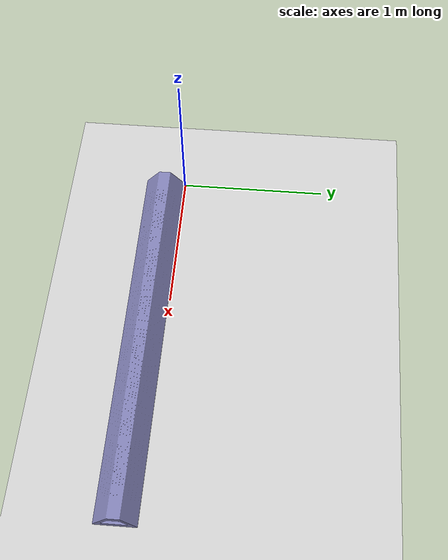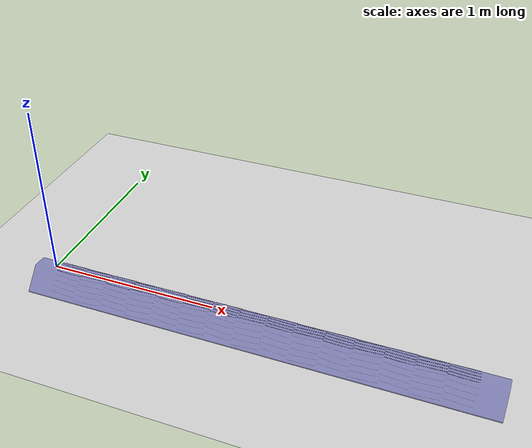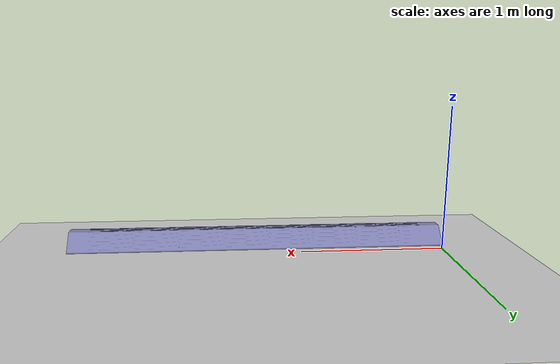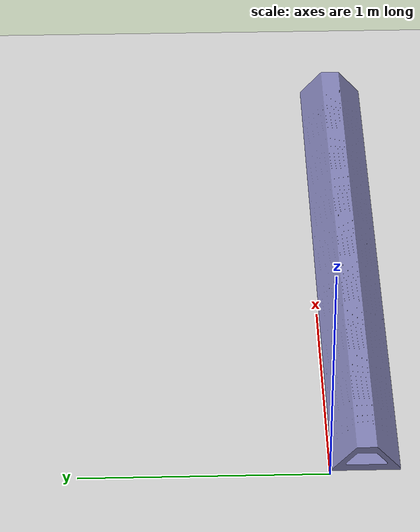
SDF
<?xml version='1.0'?>
<sdf version="1.9">
  <world name='empty'>
    <physics name='1ms' type='ignored'>
      <max_step_size>0.001</max_step_size>
      <real_time_factor>1</real_time_factor>
      <real_time_update_rate>1000</real_time_update_rate>
    </physics>
    <plugin name='gz::sim::systems::Physics' filename='gz-sim-physics-system'/>
    <plugin name='gz::sim::systems::UserCommands' filename='gz-sim-user-commands-system'/>
    <plugin name='gz::sim::systems::SceneBroadcaster' filename='gz-sim-scene-broadcaster-system'/>
    <plugin name='gz::sim::systems::Contact' filename='gz-sim-contact-system'/>

    <plugin filename="libignition-gazebo-sensors-system.so" name="ignition::gazebo::systems::Sensors">
      <render_engine>ogre2</render_engine>
    </plugin>

    <gravity>0 0 -9.8000000000000007</gravity>
    <magnetic_field>5.5644999999999998e-06 2.2875799999999999e-05 -4.2388400000000002e-05</magnetic_field>
    <atmosphere type='adiabatic'/>
    <scene>
      <ambient>0.400000006 0.400000006 0.400000006 1</ambient>
      <background>0.699999988 0.699999988 0.699999988 1</background>
      <shadows>true</shadows>
    </scene>
    <model name='ground_plane'>
      <static>true</static>
      <link name='link'>
        <collision name='collision'>
          <geometry>
            <plane>
              <normal>0 0 1</normal>
              <size>100 100</size>
            </plane>
          </geometry>
          <surface>
            <friction>
              <ode/>
            </friction>
            <bounce/>
            <contact/>
          </surface>
        </collision>
        <visual name='visual'>
          <geometry>
            <plane>
              <normal>0 0 1</normal>
              <size>100 100</size>
            </plane>
          </geometry>
          <material>
            <ambient>0.800000012 0.800000012 0.800000012 1</ambient>
            <diffuse>0.800000012 0.800000012 0.800000012 1</diffuse>
            <specular>0.800000012 0.800000012 0.800000012 1</specular>
          </material>
        </visual>
        <pose>0 0 0 0 0 0</pose>
        <inertial>
          <pose>0 0 0 0 0 0</pose>
          <mass>1</mass>
          <inertia>
            <ixx>1</ixx>
            <ixy>0</ixy>
            <ixz>0</ixz>
            <iyy>1</iyy>
            <iyz>0</iyz>
            <izz>1</izz>
          </inertia>
        </inertial>
        <enable_wind>false</enable_wind>
      </link>
      <pose>0 0 0 0 0 0</pose>
      <self_collide>false</self_collide>
    </model>

    <!-- New Ramp Model -->
    <model name='ramp'>
      <static>true</static>
      <link name='link'>
        <collision name='collision'>
          <geometry>
            <mesh>
              <uri>file://ramp.stl</uri>
              <scale>0.1 0.01 0.004</scale>
            </mesh>
          </geometry>
          <surface>
            <friction>
              <ode>
                <mu>0.8</mu>
                <mu2>0.8</mu2>
              </ode>
            </friction>
            <bounce/>
            <contact>
              <collide_bitmask>65535</collide_bitmask>
            </contact>
          </surface>
        </collision>
        <visual name='visual'>
          <geometry>
            <mesh>
              <uri>file://ramp.stl</uri>
              <scale>0.1 0.01 0.004</scale>
            </mesh>
          </geometry>
          <material>
            <ambient>0.5 0.5 0.7 1</ambient>
            <diffuse>0.5 0.5 0.7 1</diffuse>
            <specular>0.1 0.1 0.1 1</specular>
          </material>
        </visual>
        <pose>0 0 0 0 0 0</pose>
        <inertial>
          <pose>0 0 0 0 0 0</pose>
          <mass>10</mass>
          <inertia>
            <ixx>1</ixx>
            <ixy>0</ixy>
            <ixz>0</ixz>
            <iyy>1</iyy>
            <iyz>0</iyz>
            <izz>1</izz>
          </inertia>
        </inertial>
        <enable_wind>false</enable_wind>
      </link>
      <pose>0 0 0 1.5708 0 0</pose>
      <self_collide>false</self_collide>
    </model>

    <light name='sun' type='directional'>
      <pose>0 0 10 0 0 0</pose>
      <cast_shadows>true</cast_shadows>
      <intensity>1</intensity>
      <direction>-0.5 0.10000000000000001 -0.90000000000000002</direction>
      <diffuse>0.800000012 0.800000012 0.800000012 1</diffuse>
      <specular>0.200000003 0.200000003 0.200000003 1</specular>
      <attenuation>
        <range>1000</range>
        <linear>0.01</linear>
        <constant>0.90000000000000002</constant>
        <quadratic>0.001</quadratic>
      </attenuation>
      <spot>
        <inner_angle>0</inner_angle>
        <outer_angle>0</outer_angle>
        <falloff>0</falloff>
      </spot>
    </light>
  </world>
</sdf>
